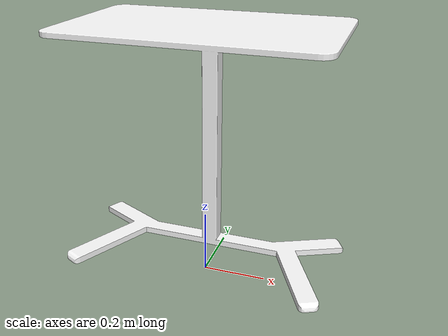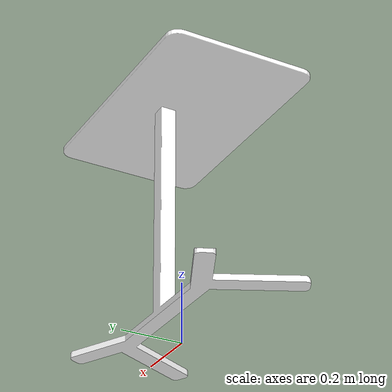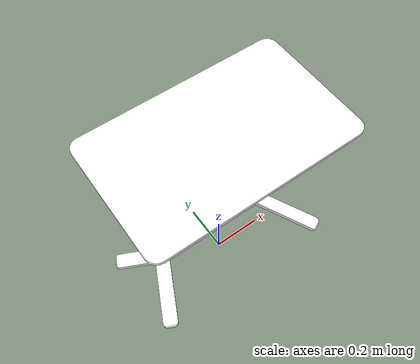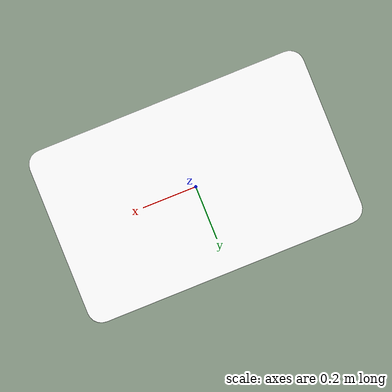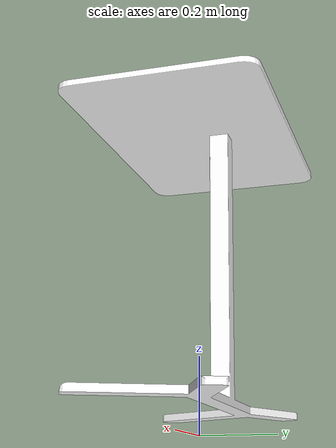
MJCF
<mujoco>
  <compiler angle="radian" assetdir="assets" autolimits="true"/>

  <asset>

    <!-- Textures -->
    <texture type="2d" colorspace="sRGB" name="table_UV" file="table_desk.png"/>

    <!-- Materials -->
    <material name="table" rgba="1 1 1 1" reflectance="0.5" metallic="0.0" roughness="0.5">
      <layer texture="table_UV" role="rgb"/>
    </material>

    <!-- Visual meshes -->
    <mesh class="visual" name="V_table_Desk" file="V_table_Desk.obj"/>

    <!-- Collision meshes -->
  </asset>

  <default>
      <default class="visual">
        <geom type="mesh" contype="0" conaffinity="0" group="2" density="0"/>
      </default>
  </default>

  <worldbody>

    <body name="B_table_Desk" pos="0.0 0.0 0.0" quat="1.0 0.0 0.0 0.0">
      <geom class="visual" mesh="V_table_Desk" pos="0.0 0.0 0.0" quat="1.0 0.0 0.0 0.0" material="table"/>
    </body>
  </worldbody>
</mujoco>
